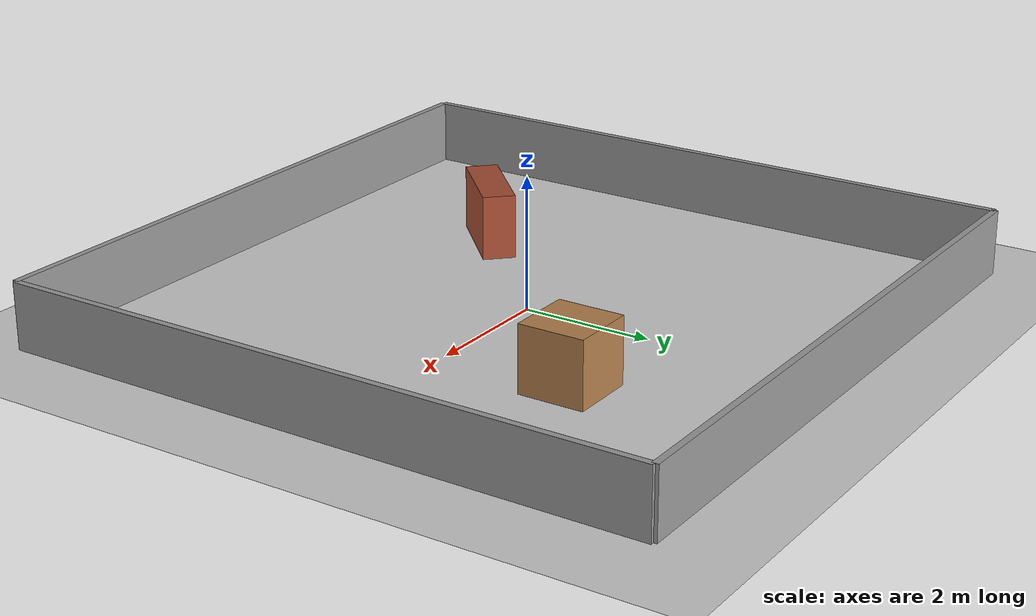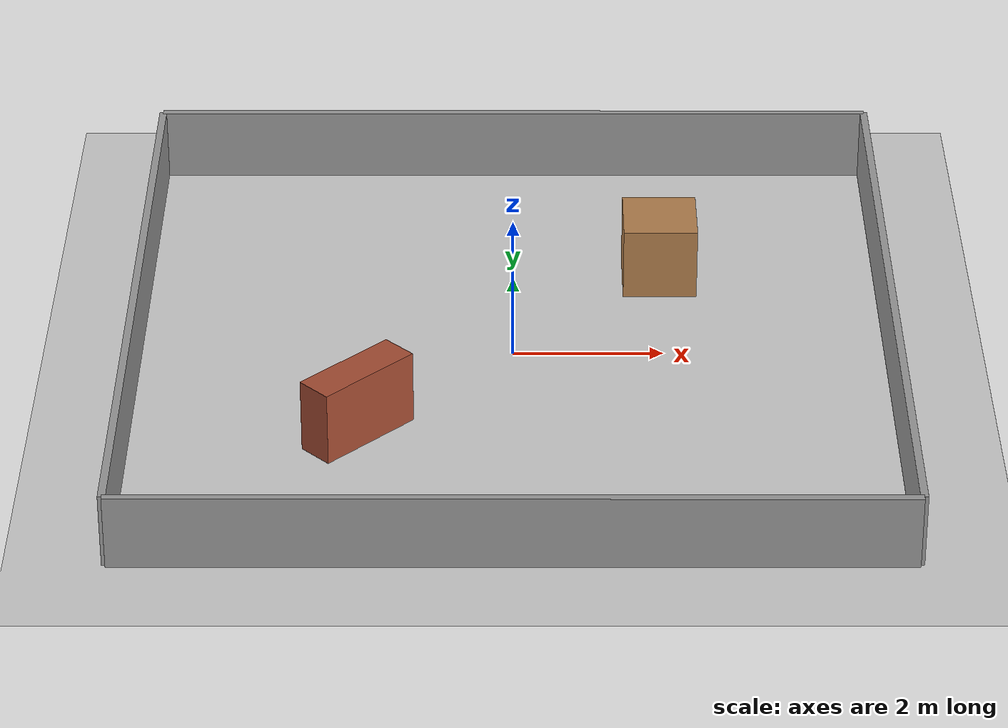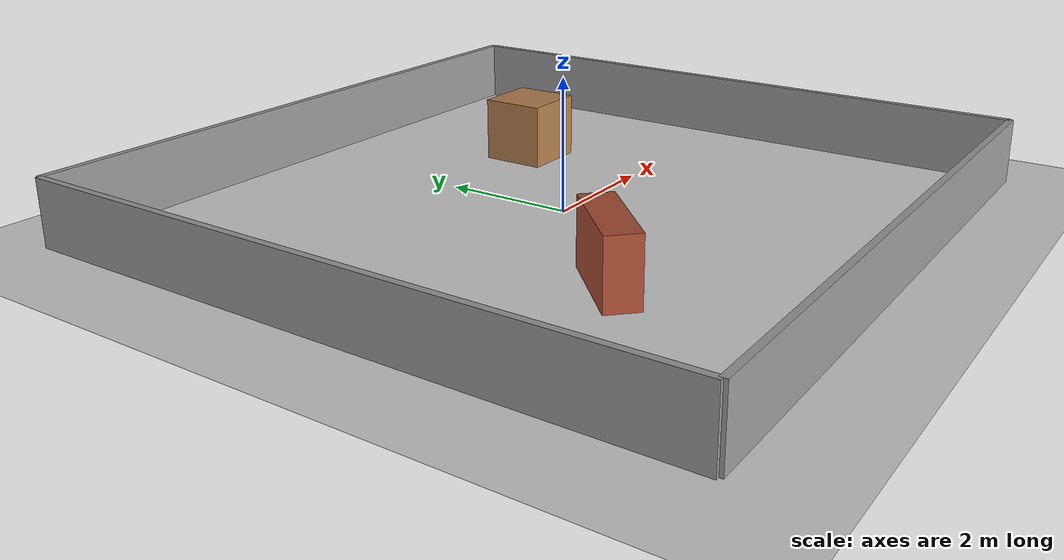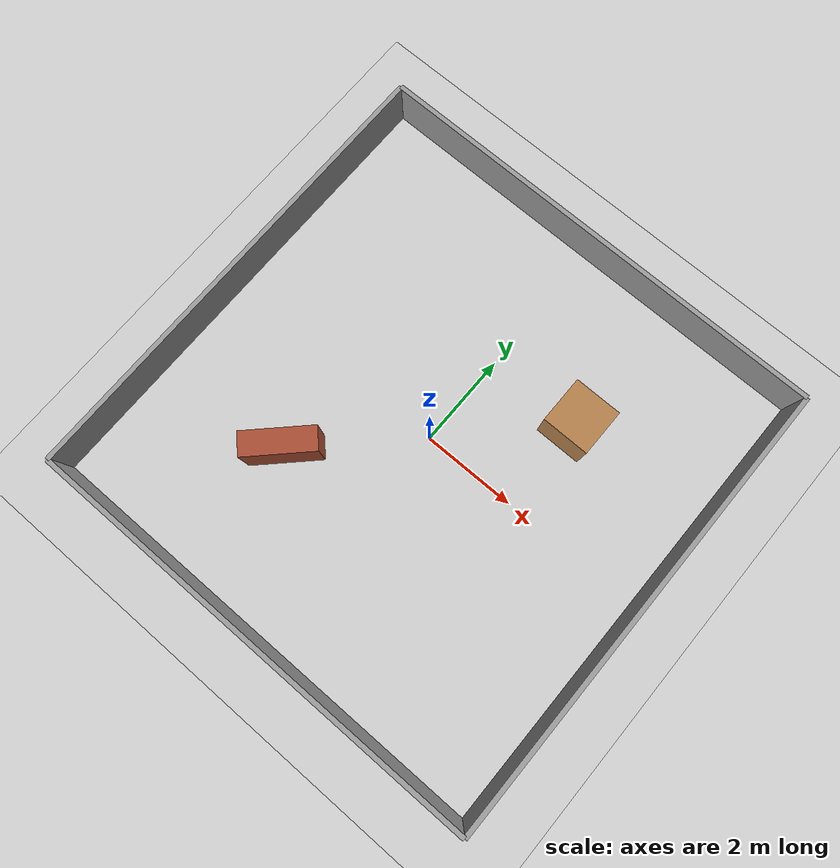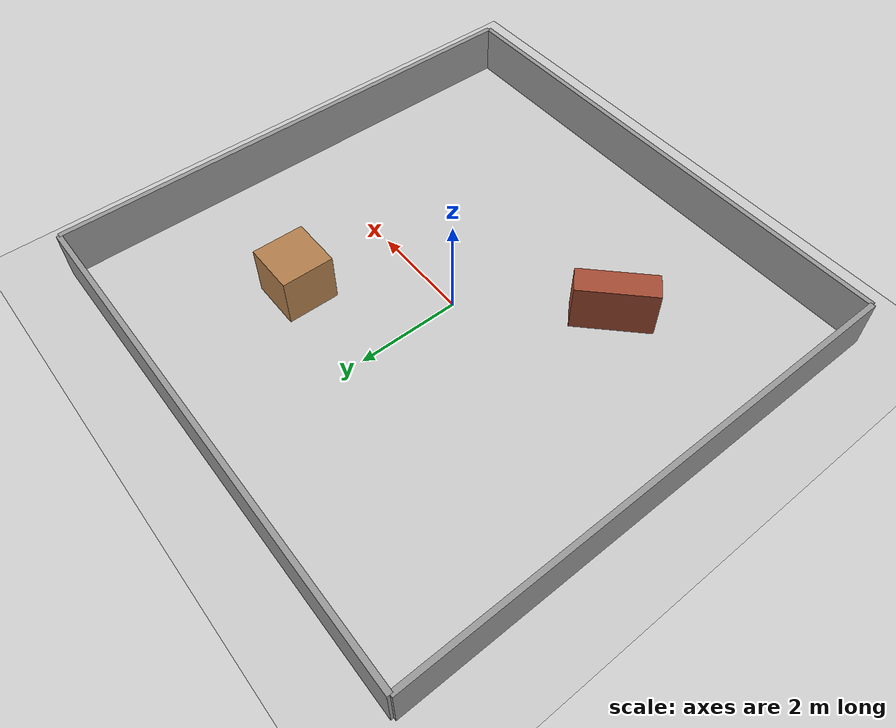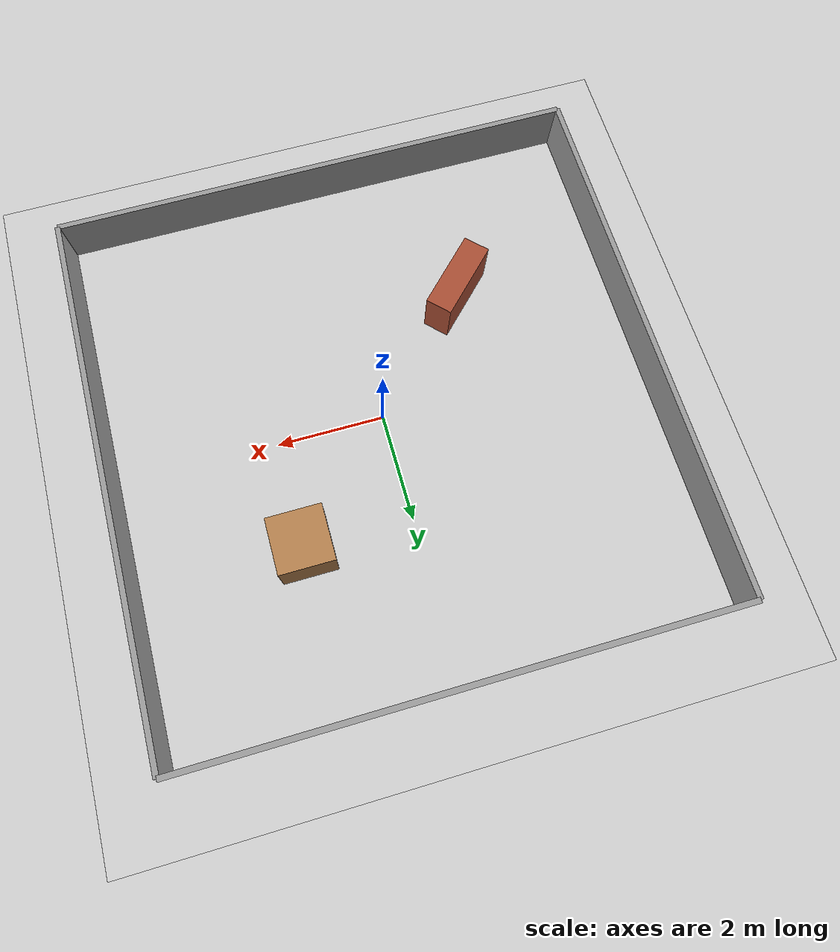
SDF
<?xml version="1.0" ?>
<sdf version="1.6">
  <world name="mbot_room">
    <!-- A global light source -->
    <include>
      <uri>model://sun</uri>
    </include>
    <!-- A ground plane -->
    <include>
      <uri>model://ground_plane</uri>
    </include>

    <!-- Outer Walls -->
    <model name='outer_walls'>
      <static>1</static>
      <link name='link'>
        <collision name='collision_north'>
          <pose>5 0 0.5 0 0 0</pose>
          <geometry><box><size>0.1 10 1</size></box></geometry>
        </collision>
        <visual name='visual_north'>
          <pose>5 0 0.5 0 0 0</pose>
          <geometry><box><size>0.1 10 1</size></box></geometry>
          <material><script><name>Gazebo/Grey</name></script></material>
        </visual>

        <collision name='collision_south'>
          <pose>-5 0 0.5 0 0 0</pose>
          <geometry><box><size>0.1 10 1</size></box></geometry>
        </collision>
        <visual name='visual_south'>
          <pose>-5 0 0.5 0 0 0</pose>
          <geometry><box><size>0.1 10 1</size></box></geometry>
          <material><script><name>Gazebo/Grey</name></script></material>
        </visual>

        <collision name='collision_east'>
          <pose>0 5 0.5 0 0 0</pose>
          <geometry><box><size>10 0.1 1</size></box></geometry>
        </collision>
        <visual name='visual_east'>
          <pose>0 5 0.5 0 0 0</pose>
          <geometry><box><size>10 0.1 1</size></box></geometry>
          <material><script><name>Gazebo/Grey</name></script></material>
        </visual>

        <collision name='collision_west'>
          <pose>0 -5 0.5 0 0 0</pose>
          <geometry><box><size>10 0.1 1</size></box></geometry>
        </collision>
        <visual name='visual_west'>
          <pose>0 -5 0.5 0 0 0</pose>
          <geometry><box><size>10 0.1 1</size></box></geometry>
          <material><script><name>Gazebo/Grey</name></script></material>
        </visual>
      </link>
    </model>

    <!-- Some Obstacles -->
    <model name='obstacle_1'>
      <pose>2 2 0.5 0 0 0</pose>
      <static>1</static>
      <link name='link'>
        <collision name='collision'>
          <geometry><box><size>1 1 1</size></box></geometry>
        </collision>
        <visual name='visual'>
          <geometry><box><size>1 1 1</size></box></geometry>
          <material><script><name>Gazebo/Wood</name></script></material>
        </visual>
      </link>
    </model>

    <model name='obstacle_2'>
      <pose>-2 -2 0.5 0 0 0.78</pose>
      <static>1</static>
      <link name='link'>
        <collision name='collision'>
          <geometry><box><size>1.5 0.5 1</size></box></geometry>
        </collision>
        <visual name='visual'>
          <geometry><box><size>1.5 0.5 1</size></box></geometry>
          <material><script><name>Gazebo/Bricks</name></script></material>
        </visual>
      </link>
    </model>

    <physics type="ode">
      <real_time_update_rate>1000.0</real_time_update_rate>
      <max_step_size>0.001</max_step_size>
      <real_time_factor>1</real_time_factor>
    </physics>
  </world>
</sdf>
